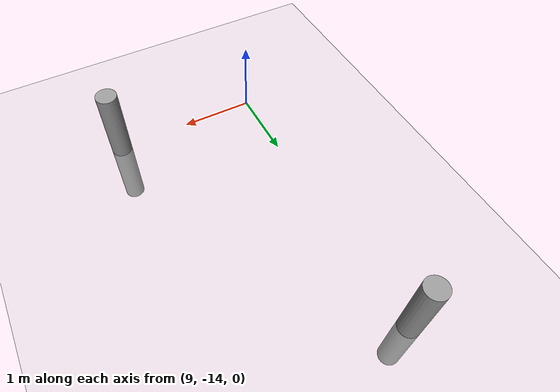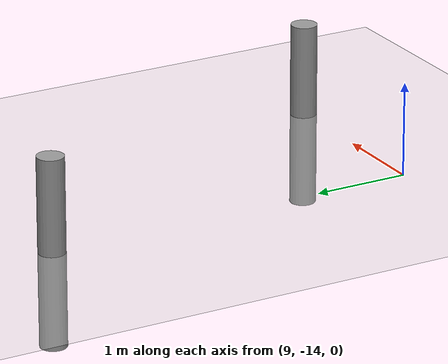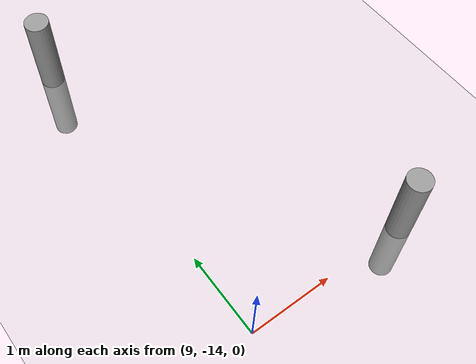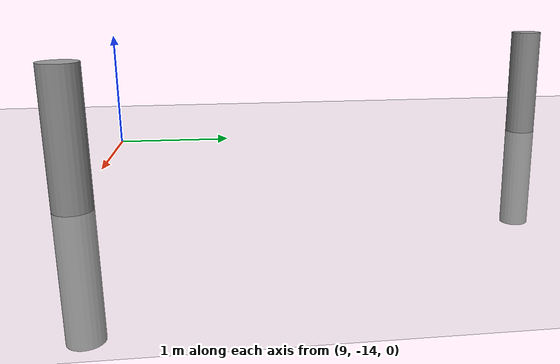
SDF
<sdf version="1.6">
 <world name="default">
  <model name="ground_plane">
   <static>1</static>
   <link name="link">
    <collision name="collision">
     <geometry><plane><normal>0 0 1</normal><size>100 100</size></plane></geometry>
     <surface><friction><ode><mu>100</mu><mu2>50</mu2></ode></friction></surface>
    </collision>
    <visual name="visual">
     <cast_shadows>0</cast_shadows>
     <geometry><plane><normal>0 0 1</normal><size>100 100</size></plane></geometry>
     <material>
      <script><uri>file://media/materials/scripts/gazebo.material</uri><name>Gazebo/Grey</name></script>
     </material>
    </visual>
   </link>
  </model>
  <model name="my_cylinder014_clone_13">
   <pose>11 -14 0 0 -0 0</pose>
   <link name="my_cylinder014::link">
    <inertial>
     <mass>1</mass>
     <inertia><ixx>0.145833</ixx><ixy>0</ixy><ixz>0</ixz><iyy>0.145833</iyy><iyz>0</iyz><izz>0.125</izz></inertia>
    </inertial>
    <visual name="visual">
     <geometry><cylinder><radius>0.14</radius><length>2</length></cylinder></geometry>
     <material>
      <script><name>Gazebo/Grey</name><uri>file://media/materials/scripts/gazebo.material</uri></script>
      <ambient>0.3 0.3 0.3 1</ambient>
      <diffuse>0.7 0.7 0.7 1</diffuse>
      <specular>1 0.01 0.01 1</specular>
      <emissive>0 0 0 1</emissive>
      <shader type="vertex"><normal_map>__default__</normal_map></shader>
     </material>
    </visual>
    <collision name="collision">
     <geometry><cylinder><radius>0.14</radius><length>2</length></cylinder></geometry>
     <surface>
      <friction>
       <ode><mu>1</mu><mu2>1</mu2><fdir1>0 0 0</fdir1><slip1>0</slip1><slip2>0</slip2></ode>
       <torsional>
        <coefficient>1</coefficient>
        <patch_radius>0</patch_radius>
        <surface_radius>0</surface_radius>
        <use_patch_radius>1</use_patch_radius>
        <ode><slip>0</slip></ode>
       </torsional>
      </friction>
      <bounce><restitution_coefficient>0</restitution_coefficient><threshold>1e+06</threshold></bounce>
      <contact>
       <collide_without_contact>0</collide_without_contact>
       <collide_without_contact_bitmask>1</collide_without_contact_bitmask>
       <collide_bitmask>1</collide_bitmask>
       <ode>
        <soft_cfm>0</soft_cfm>
        <soft_erp>0.2</soft_erp>
        <kp>1e+13</kp>
        <kd>1</kd>
        <max_vel>0.01</max_vel>
        <min_depth>0</min_depth>
       </ode>
       <bullet>
        <split_impulse>1</split_impulse>
        <split_impulse_penetration_threshold>-0.01</split_impulse_penetration_threshold>
        <soft_cfm>0</soft_cfm>
        <soft_erp>0.2</soft_erp>
        <kp>1e+13</kp>
        <kd>1</kd>
       </bullet>
      </contact>
     </surface>
    </collision>
   </link>
   <static>1</static>
  </model>
  <model name="my_cylinder014_clone_13">
   <pose>11 -14 0 0 -0 0</pose>
   <link name="my_cylinder014::link">
    <inertial>
     <mass>1</mass>
     <inertia><ixx>0.145833</ixx><ixy>0</ixy><ixz>0</ixz><iyy>0.145833</iyy><iyz>0</iyz><izz>0.125</izz></inertia>
    </inertial>
    <visual name="visual">
     <geometry><cylinder><radius>0.14</radius><length>2</length></cylinder></geometry>
     <material>
      <script><name>Gazebo/Grey</name><uri>file://media/materials/scripts/gazebo.material</uri></script>
      <ambient>0.3 0.3 0.3 1</ambient>
      <diffuse>0.7 0.7 0.7 1</diffuse>
      <specular>1 0.01 0.01 1</specular>
      <emissive>0 0 0 1</emissive>
      <shader type="vertex"><normal_map>__default__</normal_map></shader>
     </material>
    </visual>
    <collision name="collision">
     <geometry><cylinder><radius>0.14</radius><length>2</length></cylinder></geometry>
     <surface>
      <friction>
       <ode><mu>1</mu><mu2>1</mu2><fdir1>0 0 0</fdir1><slip1>0</slip1><slip2>0</slip2></ode>
       <torsional>
        <coefficient>1</coefficient>
        <patch_radius>0</patch_radius>
        <surface_radius>0</surface_radius>
        <use_patch_radius>1</use_patch_radius>
        <ode><slip>0</slip></ode>
       </torsional>
      </friction>
      <bounce><restitution_coefficient>0</restitution_coefficient><threshold>1e+06</threshold></bounce>
      <contact>
       <collide_without_contact>0</collide_without_contact>
       <collide_without_contact_bitmask>1</collide_without_contact_bitmask>
       <collide_bitmask>1</collide_bitmask>
       <ode>
        <soft_cfm>0</soft_cfm>
        <soft_erp>0.2</soft_erp>
        <kp>1e+13</kp>
        <kd>1</kd>
        <max_vel>0.01</max_vel>
        <min_depth>0</min_depth>
       </ode>
       <bullet>
        <split_impulse>1</split_impulse>
        <split_impulse_penetration_threshold>-0.01</split_impulse_penetration_threshold>
        <soft_cfm>0</soft_cfm>
        <soft_erp>0.2</soft_erp>
        <kp>1e+13</kp>
        <kd>1</kd>
       </bullet>
      </contact>
     </surface>
    </collision>
   </link>
   <static>1</static>
  </model>
  <model name="my_cylinder014_clone_28">
   <pose>9 -10 0 0 -0 0</pose>
   <link name="my_cylinder014::link">
    <inertial>
     <mass>1</mass>
     <inertia><ixx>0.145833</ixx><ixy>0</ixy><ixz>0</ixz><iyy>0.145833</iyy><iyz>0</iyz><izz>0.125</izz></inertia>
    </inertial>
    <visual name="visual">
     <geometry><cylinder><radius>0.14</radius><length>2</length></cylinder></geometry>
     <material>
      <script><name>Gazebo/Grey</name><uri>file://media/materials/scripts/gazebo.material</uri></script>
      <ambient>0.3 0.3 0.3 1</ambient>
      <diffuse>0.7 0.7 0.7 1</diffuse>
      <specular>1 0.01 0.01 1</specular>
      <emissive>0 0 0 1</emissive>
      <shader type="vertex"><normal_map>__default__</normal_map></shader>
     </material>
    </visual>
    <collision name="collision">
     <geometry><cylinder><radius>0.14</radius><length>2</length></cylinder></geometry>
     <surface>
      <friction>
       <ode><mu>1</mu><mu2>1</mu2><fdir1>0 0 0</fdir1><slip1>0</slip1><slip2>0</slip2></ode>
       <torsional>
        <coefficient>1</coefficient>
        <patch_radius>0</patch_radius>
        <surface_radius>0</surface_radius>
        <use_patch_radius>1</use_patch_radius>
        <ode><slip>0</slip></ode>
       </torsional>
      </friction>
      <bounce><restitution_coefficient>0</restitution_coefficient><threshold>1e+06</threshold></bounce>
      <contact>
       <collide_without_contact>0</collide_without_contact>
       <collide_without_contact_bitmask>1</collide_without_contact_bitmask>
       <collide_bitmask>1</collide_bitmask>
       <ode>
        <soft_cfm>0</soft_cfm>
        <soft_erp>0.2</soft_erp>
        <kp>1e+13</kp>
        <kd>1</kd>
        <max_vel>0.01</max_vel>
        <min_depth>0</min_depth>
       </ode>
       <bullet>
        <split_impulse>1</split_impulse>
        <split_impulse_penetration_threshold>-0.01</split_impulse_penetration_threshold>
        <soft_cfm>0</soft_cfm>
        <soft_erp>0.2</soft_erp>
        <kp>1e+13</kp>
        <kd>1</kd>
       </bullet>
      </contact>
     </surface>
    </collision>
   </link>
   <static>1</static>
  </model>
 </world>
</sdf>
